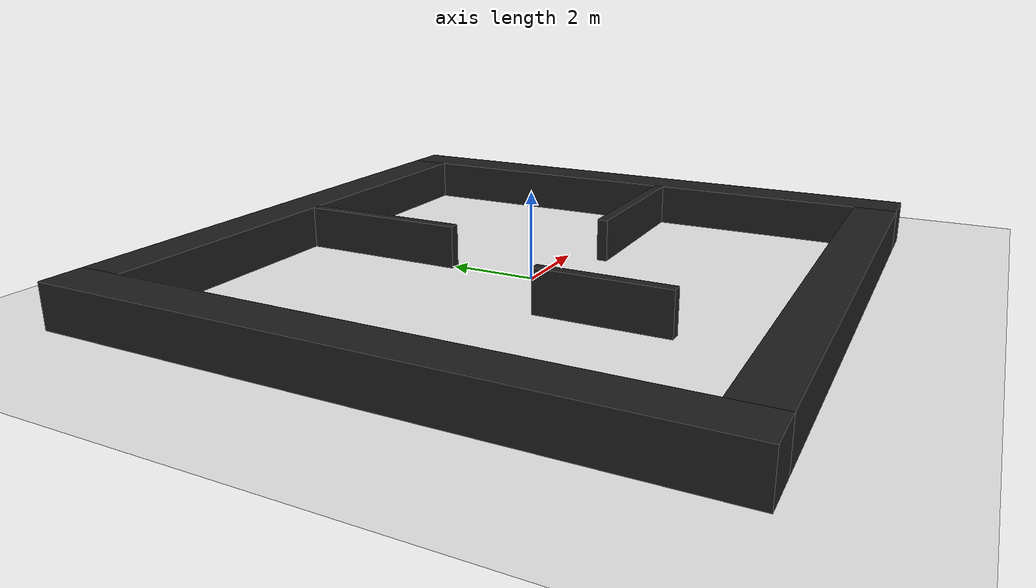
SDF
<sdf version="1.6">
 <world name="default">
  <plugin name="gazebo_ros_state" filename="libgazebo_ros_state.so">
   <ros><namespace>/gazebo</namespace></ros>
   <update_rate>10</update_rate>
  </plugin>
  <light name="sun" type="directional">
   <pose>0 0 10 0 -0 0</pose>
   <diffuse>0.8 0.8 0.8 1</diffuse>
   <specular>0.2 0.2 0.2 1</specular>
   <attenuation>
    <range>1000</range>
    <constant>0.9</constant>
    <linear>0.01</linear>
    <quadratic>0.001</quadratic>
   </attenuation>
   <direction>-0.5 0.1 -0.9</direction>
  </light>
  <model name="ground_plane">
   <static>1</static>
   <link name="link">
    <collision name="collision">
     <geometry><plane><normal>0 0 1</normal><size>100 100</size></plane></geometry>
     <surface><friction><ode><mu>100</mu><mu2>50</mu2></ode></friction></surface>
    </collision>
    <visual name="visual">
     <cast_shadows>0</cast_shadows>
     <geometry><plane><normal>0 0 1</normal><size>100 100</size></plane></geometry>
     <material>
      <script><uri>file://media/materials/scripts/gazebo.material</uri><name>Gazebo/White</name></script>
     </material>
    </visual>
   </link>
  </model>
  <gravity>0 0 -9.8</gravity>
  <magnetic_field>6e-06 2.3e-05 -4.2e-05</magnetic_field>
  <atmosphere type="adiabatic"/>
  <physics name="default_physics" default="0" type="ode">
   <max_step_size>0.001</max_step_size>
   <real_time_factor>1</real_time_factor>
   <real_time_update_rate>1000</real_time_update_rate>
  </physics>
  <scene><ambient>0.4 0.4 0.4 1</ambient><background>0.7 0.7 0.7 1</background><shadows>1</shadows></scene>
  <spherical_coordinates>
   <surface_model>EARTH_WGS84</surface_model>
   <latitude_deg>0</latitude_deg>
   <longitude_deg>0</longitude_deg>
   <elevation>0</elevation>
   <heading_deg>0</heading_deg>
  </spherical_coordinates>
  <model name="wall_0">
   <static>1</static>
   <pose>-6.5 0 0.5 0 0 0</pose>
   <link name="link">
    <inertial>
     <mass>1</mass>
     <inertia>
      <ixx>0.166667</ixx>
      <ixy>0</ixy>
      <ixz>0</ixz>
      <iyy>0.166667</iyy>
      <iyz>0</iyz>
      <izz>0.166667</izz>
     </inertia>
     <pose>-6.5 0 0.5 0 0 0</pose>
    </inertial>
    <collision name="collision"><geometry><box><size>1 14 1</size></box></geometry></collision>
    <visual name="visual">
     <geometry><box><size>1 14 1</size></box></geometry>
     <material>
      <script><name>Gazebo/FlatBlack</name><uri>file://media/materials/scripts/gazebo.material</uri></script>
     </material>
    </visual>
   </link>
  </model>
  <model name="wall_1">
   <static>1</static>
   <pose>6.5 0 0.5 0 0 0</pose>
   <link name="link">
    <inertial>
     <mass>1</mass>
     <inertia>
      <ixx>0.166667</ixx>
      <ixy>0</ixy>
      <ixz>0</ixz>
      <iyy>0.166667</iyy>
      <iyz>0</iyz>
      <izz>0.166667</izz>
     </inertia>
     <pose>6.5 0 0.5 0 0 0</pose>
    </inertial>
    <collision name="collision"><geometry><box><size>1 14 1</size></box></geometry></collision>
    <visual name="visual">
     <geometry><box><size>1 14 1</size></box></geometry>
     <material>
      <script><name>Gazebo/FlatBlack</name><uri>file://media/materials/scripts/gazebo.material</uri></script>
     </material>
    </visual>
   </link>
  </model>
  <model name="wall_2">
   <static>1</static>
   <pose>0 -6.5 0.5 0 0 -1.57071</pose>
   <link name="link">
    <inertial>
     <mass>1</mass>
     <inertia>
      <ixx>0.166667</ixx>
      <ixy>0</ixy>
      <ixz>0</ixz>
      <iyy>0.166667</iyy>
      <iyz>0</iyz>
      <izz>0.166667</izz>
     </inertia>
     <pose>0 -6.5 0.5 0 0 -1.57071</pose>
    </inertial>
    <collision name="collision"><geometry><box><size>1 12 1</size></box></geometry></collision>
    <visual name="visual">
     <geometry><box><size>1 12 1</size></box></geometry>
     <material>
      <script><name>Gazebo/FlatBlack</name><uri>file://media/materials/scripts/gazebo.material</uri></script>
     </material>
    </visual>
   </link>
  </model>
  <model name="wall_3">
   <static>1</static>
   <pose>0 6.5 0.5 0 0 -1.57071</pose>
   <link name="link">
    <inertial>
     <mass>1</mass>
     <inertia>
      <ixx>0.166667</ixx>
      <ixy>0</ixy>
      <ixz>0</ixz>
      <iyy>0.166667</iyy>
      <iyz>0</iyz>
      <izz>0.166667</izz>
     </inertia>
     <pose>0 6.5 0.5 0 0 -1.57071</pose>
    </inertial>
    <collision name="collision"><geometry><box><size>1 12 1</size></box></geometry></collision>
    <visual name="visual">
     <geometry><box><size>1 12 1</size></box></geometry>
     <material>
      <script><name>Gazebo/FlatBlack</name><uri>file://media/materials/scripts/gazebo.material</uri></script>
     </material>
    </visual>
   </link>
  </model>
  <model name="wall_4">
   <static>1</static>
   <pose>4 -0.875 0.5 0 0 -1.57071</pose>
   <link name="link">
    <inertial>
     <mass>1</mass>
     <inertia>
      <ixx>0.166667</ixx>
      <ixy>0</ixy>
      <ixz>0</ixz>
      <iyy>0.166667</iyy>
      <iyz>0</iyz>
      <izz>0.166667</izz>
     </inertia>
     <pose>4 -0.875 0.5 0 0 -1.57071</pose>
    </inertial>
    <collision name="collision"><geometry><box><size>0.25 4 1</size></box></geometry></collision>
    <visual name="visual">
     <geometry><box><size>0.25 4 1</size></box></geometry>
     <material>
      <script><name>Gazebo/FlatBlack</name><uri>file://media/materials/scripts/gazebo.material</uri></script>
     </material>
    </visual>
   </link>
  </model>
  <model name="wall_5">
   <static>1</static>
   <pose>0 4 0.5 0 0 -1.57071</pose>
   <link name="link">
    <inertial>
     <mass>1</mass>
     <inertia>
      <ixx>0.166667</ixx>
      <ixy>0</ixy>
      <ixz>0</ixz>
      <iyy>0.166667</iyy>
      <iyz>0</iyz>
      <izz>0.166667</izz>
     </inertia>
     <pose>0 4 0.5 0 0 -1.57071</pose>
    </inertial>
    <collision name="collision"><geometry><box><size>4 0.25 1</size></box></geometry></collision>
    <visual name="visual">
     <geometry><box><size>4 0.25 1</size></box></geometry>
     <material>
      <script><name>Gazebo/FlatBlack</name><uri>file://media/materials/scripts/gazebo.material</uri></script>
     </material>
    </visual>
   </link>
  </model>
  <model name="wall_6">
   <static>1</static>
   <pose>-1.875 -2.5 0.5 0 0 -1.57071</pose>
   <link name="link">
    <inertial>
     <mass>1</mass>
     <inertia>
      <ixx>0.166667</ixx>
      <ixy>0</ixy>
      <ixz>0</ixz>
      <iyy>0.166667</iyy>
      <iyz>0</iyz>
      <izz>0.166667</izz>
     </inertia>
     <pose>-1.875 -2.5 0.5 0 0 -1.57071</pose>
    </inertial>
    <collision name="collision"><geometry><box><size>3 0.25 1</size></box></geometry></collision>
    <visual name="visual">
     <geometry><box><size>3 0.25 1</size></box></geometry>
     <material>
      <script><name>Gazebo/FlatBlack</name><uri>file://media/materials/scripts/gazebo.material</uri></script>
     </material>
    </visual>
   </link>
  </model>
 </world>
</sdf>
